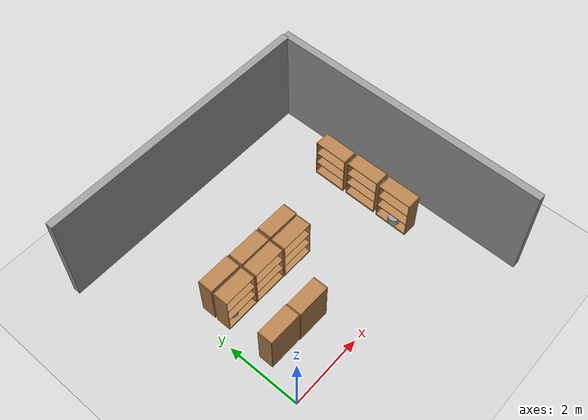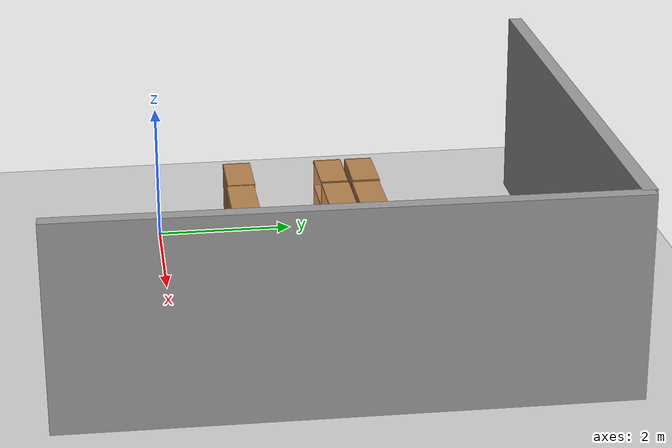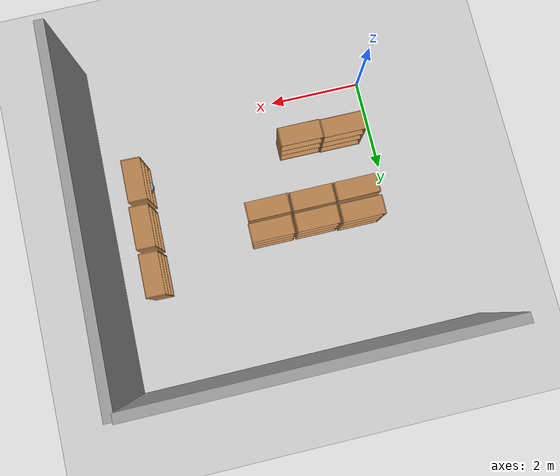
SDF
<sdf version="1.7">
 <world name="default">
  <model name="ground_plane">
   <static>1</static>
   <link name="link">
    <collision name="collision">
     <geometry><plane><normal>0 0 1</normal><size>100 100</size></plane></geometry>
     <surface>
      <contact><collide_bitmask>65535</collide_bitmask></contact>
      <friction><ode><mu>100</mu><mu2>50</mu2></ode></friction>
     </surface>
    </collision>
    <visual name="visual">
     <cast_shadows>0</cast_shadows>
     <geometry><plane><normal>0 0 1</normal><size>100 100</size></plane></geometry>
     <material>
      <script><uri>file://media/materials/scripts/gazebo.material</uri><name>Gazebo/Grey</name></script>
     </material>
    </visual>
   </link>
  </model>
  <model name="bookshelf">
   <static>1</static>
   <link name="link">
    <inertial><mass>1</mass></inertial>
    <collision name="back">
     <pose>0 0.005 0.6 0 -0 0</pose>
     <geometry><box><size>0.9 0.01 1.2</size></box></geometry>
    </collision>
    <visual name="visual1">
     <pose>0 0.005 0.6 0 -0 0</pose>
     <geometry><box><size>0.9 0.01 1.2</size></box></geometry>
     <material>
      <script><uri>file://media/materials/scripts/gazebo.material</uri><name>Gazebo/Wood</name></script>
     </material>
    </visual>
    <collision name="left_side">
     <pose>0.45 -0.195 0.6 0 -0 0</pose>
     <geometry><box><size>0.02 0.4 1.2</size></box></geometry>
    </collision>
    <visual name="visual2">
     <pose>0.45 -0.195 0.6 0 -0 0</pose>
     <geometry><box><size>0.02 0.4 1.2</size></box></geometry>
     <material>
      <script><uri>file://media/materials/scripts/gazebo.material</uri><name>Gazebo/Wood</name></script>
     </material>
    </visual>
    <collision name="right_side">
     <pose>-0.45 -0.195 0.6 0 -0 0</pose>
     <geometry><box><size>0.02 0.4 1.2</size></box></geometry>
    </collision>
    <visual name="visual3">
     <pose>-0.45 -0.195 0.6 0 -0 0</pose>
     <geometry><box><size>0.02 0.4 1.2</size></box></geometry>
     <material>
      <script><uri>file://media/materials/scripts/gazebo.material</uri><name>Gazebo/Wood</name></script>
     </material>
    </visual>
    <collision name="bottom">
     <pose>0 -0.195 0.03 0 -0 0</pose>
     <geometry><box><size>0.88 0.4 0.06</size></box></geometry>
    </collision>
    <visual name="visual4">
     <pose>0 -0.195 0.03 0 -0 0</pose>
     <geometry><box><size>0.88 0.4 0.06</size></box></geometry>
     <material>
      <script><uri>file://media/materials/scripts/gazebo.material</uri><name>Gazebo/Wood</name></script>
     </material>
    </visual>
    <collision name="top">
     <pose>0 -0.195 1.19 0 -0 0</pose>
     <geometry><box><size>0.88 0.4 0.02</size></box></geometry>
    </collision>
    <visual name="visual5">
     <pose>0 -0.195 1.19 0 -0 0</pose>
     <geometry><box><size>0.88 0.4 0.02</size></box></geometry>
     <material>
      <script><uri>file://media/materials/scripts/gazebo.material</uri><name>Gazebo/Wood</name></script>
     </material>
    </visual>
    <collision name="low_shelf">
     <pose>0 -0.195 0.43 0 -0 0</pose>
     <geometry><box><size>0.88 0.4 0.02</size></box></geometry>
    </collision>
    <visual name="visual6">
     <pose>0 -0.195 0.43 0 -0 0</pose>
     <geometry><box><size>0.88 0.4 0.02</size></box></geometry>
     <material>
      <script><uri>file://media/materials/scripts/gazebo.material</uri><name>Gazebo/Wood</name></script>
     </material>
    </visual>
    <collision name="high_shelf">
     <pose>0 -0.195 0.8 0 -0 0</pose>
     <geometry><box><size>0.88 0.4 0.02</size></box></geometry>
    </collision>
    <visual name="visual7">
     <pose>0 -0.195 0.8 0 -0 0</pose>
     <geometry><box><size>0.88 0.4 0.02</size></box></geometry>
     <material>
      <script><uri>file://media/materials/scripts/gazebo.material</uri><name>Gazebo/Wood</name></script>
     </material>
    </visual>
   </link>
   <pose>2.68648 2.72445 0 0 -0 0</pose>
  </model>
  <model name="bookshelf_0">
   <static>1</static>
   <link name="link">
    <inertial><mass>1</mass></inertial>
    <collision name="back">
     <pose>0 0.005 0.6 0 -0 0</pose>
     <geometry><box><size>0.9 0.01 1.2</size></box></geometry>
    </collision>
    <visual name="visual1">
     <pose>0 0.005 0.6 0 -0 0</pose>
     <geometry><box><size>0.9 0.01 1.2</size></box></geometry>
     <material>
      <script><uri>file://media/materials/scripts/gazebo.material</uri><name>Gazebo/Wood</name></script>
     </material>
    </visual>
    <collision name="left_side">
     <pose>0.45 -0.195 0.6 0 -0 0</pose>
     <geometry><box><size>0.02 0.4 1.2</size></box></geometry>
    </collision>
    <visual name="visual2">
     <pose>0.45 -0.195 0.6 0 -0 0</pose>
     <geometry><box><size>0.02 0.4 1.2</size></box></geometry>
     <material>
      <script><uri>file://media/materials/scripts/gazebo.material</uri><name>Gazebo/Wood</name></script>
     </material>
    </visual>
    <collision name="right_side">
     <pose>-0.45 -0.195 0.6 0 -0 0</pose>
     <geometry><box><size>0.02 0.4 1.2</size></box></geometry>
    </collision>
    <visual name="visual3">
     <pose>-0.45 -0.195 0.6 0 -0 0</pose>
     <geometry><box><size>0.02 0.4 1.2</size></box></geometry>
     <material>
      <script><uri>file://media/materials/scripts/gazebo.material</uri><name>Gazebo/Wood</name></script>
     </material>
    </visual>
    <collision name="bottom">
     <pose>0 -0.195 0.03 0 -0 0</pose>
     <geometry><box><size>0.88 0.4 0.06</size></box></geometry>
    </collision>
    <visual name="visual4">
     <pose>0 -0.195 0.03 0 -0 0</pose>
     <geometry><box><size>0.88 0.4 0.06</size></box></geometry>
     <material>
      <script><uri>file://media/materials/scripts/gazebo.material</uri><name>Gazebo/Wood</name></script>
     </material>
    </visual>
    <collision name="top">
     <pose>0 -0.195 1.19 0 -0 0</pose>
     <geometry><box><size>0.88 0.4 0.02</size></box></geometry>
    </collision>
    <visual name="visual5">
     <pose>0 -0.195 1.19 0 -0 0</pose>
     <geometry><box><size>0.88 0.4 0.02</size></box></geometry>
     <material>
      <script><uri>file://media/materials/scripts/gazebo.material</uri><name>Gazebo/Wood</name></script>
     </material>
    </visual>
    <collision name="low_shelf">
     <pose>0 -0.195 0.43 0 -0 0</pose>
     <geometry><box><size>0.88 0.4 0.02</size></box></geometry>
    </collision>
    <visual name="visual6">
     <pose>0 -0.195 0.43 0 -0 0</pose>
     <geometry><box><size>0.88 0.4 0.02</size></box></geometry>
     <material>
      <script><uri>file://media/materials/scripts/gazebo.material</uri><name>Gazebo/Wood</name></script>
     </material>
    </visual>
    <collision name="high_shelf">
     <pose>0 -0.195 0.8 0 -0 0</pose>
     <geometry><box><size>0.88 0.4 0.02</size></box></geometry>
    </collision>
    <visual name="visual7">
     <pose>0 -0.195 0.8 0 -0 0</pose>
     <geometry><box><size>0.88 0.4 0.02</size></box></geometry>
     <material>
      <script><uri>file://media/materials/scripts/gazebo.material</uri><name>Gazebo/Wood</name></script>
     </material>
    </visual>
   </link>
   <pose>1.7387 2.73379 0 0 -0 0</pose>
  </model>
  <model name="bookshelf_1">
   <static>1</static>
   <link name="link">
    <inertial><mass>1</mass></inertial>
    <collision name="back">
     <pose>0 0.005 0.6 0 -0 0</pose>
     <geometry><box><size>0.9 0.01 1.2</size></box></geometry>
    </collision>
    <visual name="visual1">
     <pose>0 0.005 0.6 0 -0 0</pose>
     <geometry><box><size>0.9 0.01 1.2</size></box></geometry>
     <material>
      <script><uri>file://media/materials/scripts/gazebo.material</uri><name>Gazebo/Wood</name></script>
     </material>
    </visual>
    <collision name="left_side">
     <pose>0.45 -0.195 0.6 0 -0 0</pose>
     <geometry><box><size>0.02 0.4 1.2</size></box></geometry>
    </collision>
    <visual name="visual2">
     <pose>0.45 -0.195 0.6 0 -0 0</pose>
     <geometry><box><size>0.02 0.4 1.2</size></box></geometry>
     <material>
      <script><uri>file://media/materials/scripts/gazebo.material</uri><name>Gazebo/Wood</name></script>
     </material>
    </visual>
    <collision name="right_side">
     <pose>-0.45 -0.195 0.6 0 -0 0</pose>
     <geometry><box><size>0.02 0.4 1.2</size></box></geometry>
    </collision>
    <visual name="visual3">
     <pose>-0.45 -0.195 0.6 0 -0 0</pose>
     <geometry><box><size>0.02 0.4 1.2</size></box></geometry>
     <material>
      <script><uri>file://media/materials/scripts/gazebo.material</uri><name>Gazebo/Wood</name></script>
     </material>
    </visual>
    <collision name="bottom">
     <pose>0 -0.195 0.03 0 -0 0</pose>
     <geometry><box><size>0.88 0.4 0.06</size></box></geometry>
    </collision>
    <visual name="visual4">
     <pose>0 -0.195 0.03 0 -0 0</pose>
     <geometry><box><size>0.88 0.4 0.06</size></box></geometry>
     <material>
      <script><uri>file://media/materials/scripts/gazebo.material</uri><name>Gazebo/Wood</name></script>
     </material>
    </visual>
    <collision name="top">
     <pose>0 -0.195 1.19 0 -0 0</pose>
     <geometry><box><size>0.88 0.4 0.02</size></box></geometry>
    </collision>
    <visual name="visual5">
     <pose>0 -0.195 1.19 0 -0 0</pose>
     <geometry><box><size>0.88 0.4 0.02</size></box></geometry>
     <material>
      <script><uri>file://media/materials/scripts/gazebo.material</uri><name>Gazebo/Wood</name></script>
     </material>
    </visual>
    <collision name="low_shelf">
     <pose>0 -0.195 0.43 0 -0 0</pose>
     <geometry><box><size>0.88 0.4 0.02</size></box></geometry>
    </collision>
    <visual name="visual6">
     <pose>0 -0.195 0.43 0 -0 0</pose>
     <geometry><box><size>0.88 0.4 0.02</size></box></geometry>
     <material>
      <script><uri>file://media/materials/scripts/gazebo.material</uri><name>Gazebo/Wood</name></script>
     </material>
    </visual>
    <collision name="high_shelf">
     <pose>0 -0.195 0.8 0 -0 0</pose>
     <geometry><box><size>0.88 0.4 0.02</size></box></geometry>
    </collision>
    <visual name="visual7">
     <pose>0 -0.195 0.8 0 -0 0</pose>
     <geometry><box><size>0.88 0.4 0.02</size></box></geometry>
     <material>
      <script><uri>file://media/materials/scripts/gazebo.material</uri><name>Gazebo/Wood</name></script>
     </material>
    </visual>
   </link>
   <pose>0.793169 2.73431 0 0 -0 0</pose>
  </model>
  <model name="bookshelf_2_clone">
   <static>1</static>
   <link name="link">
    <inertial><mass>1</mass></inertial>
    <collision name="back">
     <pose>0 0.005 0.6 0 -0 0</pose>
     <geometry><box><size>0.9 0.01 1.2</size></box></geometry>
    </collision>
    <visual name="visual1">
     <pose>0 0.005 0.6 0 -0 0</pose>
     <geometry><box><size>0.9 0.01 1.2</size></box></geometry>
     <material>
      <script><uri>file://media/materials/scripts/gazebo.material</uri><name>Gazebo/Wood</name></script>
     </material>
    </visual>
    <collision name="left_side">
     <pose>0.45 -0.195 0.6 0 -0 0</pose>
     <geometry><box><size>0.02 0.4 1.2</size></box></geometry>
    </collision>
    <visual name="visual2">
     <pose>0.45 -0.195 0.6 0 -0 0</pose>
     <geometry><box><size>0.02 0.4 1.2</size></box></geometry>
     <material>
      <script><uri>file://media/materials/scripts/gazebo.material</uri><name>Gazebo/Wood</name></script>
     </material>
    </visual>
    <collision name="right_side">
     <pose>-0.45 -0.195 0.6 0 -0 0</pose>
     <geometry><box><size>0.02 0.4 1.2</size></box></geometry>
    </collision>
    <visual name="visual3">
     <pose>-0.45 -0.195 0.6 0 -0 0</pose>
     <geometry><box><size>0.02 0.4 1.2</size></box></geometry>
     <material>
      <script><uri>file://media/materials/scripts/gazebo.material</uri><name>Gazebo/Wood</name></script>
     </material>
    </visual>
    <collision name="bottom">
     <pose>0 -0.195 0.03 0 -0 0</pose>
     <geometry><box><size>0.88 0.4 0.06</size></box></geometry>
    </collision>
    <visual name="visual4">
     <pose>0 -0.195 0.03 0 -0 0</pose>
     <geometry><box><size>0.88 0.4 0.06</size></box></geometry>
     <material>
      <script><uri>file://media/materials/scripts/gazebo.material</uri><name>Gazebo/Wood</name></script>
     </material>
    </visual>
    <collision name="top">
     <pose>0 -0.195 1.19 0 -0 0</pose>
     <geometry><box><size>0.88 0.4 0.02</size></box></geometry>
    </collision>
    <visual name="visual5">
     <pose>0 -0.195 1.19 0 -0 0</pose>
     <geometry><box><size>0.88 0.4 0.02</size></box></geometry>
     <material>
      <script><uri>file://media/materials/scripts/gazebo.material</uri><name>Gazebo/Wood</name></script>
     </material>
    </visual>
    <collision name="low_shelf">
     <pose>0 -0.195 0.43 0 -0 0</pose>
     <geometry><box><size>0.88 0.4 0.02</size></box></geometry>
    </collision>
    <visual name="visual6">
     <pose>0 -0.195 0.43 0 -0 0</pose>
     <geometry><box><size>0.88 0.4 0.02</size></box></geometry>
     <material>
      <script><uri>file://media/materials/scripts/gazebo.material</uri><name>Gazebo/Wood</name></script>
     </material>
    </visual>
    <collision name="high_shelf">
     <pose>0 -0.195 0.8 0 -0 0</pose>
     <geometry><box><size>0.88 0.4 0.02</size></box></geometry>
    </collision>
    <visual name="visual7">
     <pose>0 -0.195 0.8 0 -0 0</pose>
     <geometry><box><size>0.88 0.4 0.02</size></box></geometry>
     <material>
      <script><uri>file://media/materials/scripts/gazebo.material</uri><name>Gazebo/Wood</name></script>
     </material>
    </visual>
   </link>
   <pose>1.6637 0.95756 0 0 -0 3.13622</pose>
  </model>
  <model name="bookshelf_2_clone_0">
   <static>1</static>
   <link name="link">
    <inertial><mass>1</mass></inertial>
    <collision name="back">
     <pose>0 0.005 0.6 0 -0 0</pose>
     <geometry><box><size>0.9 0.01 1.2</size></box></geometry>
    </collision>
    <visual name="visual1">
     <pose>0 0.005 0.6 0 -0 0</pose>
     <geometry><box><size>0.9 0.01 1.2</size></box></geometry>
     <material>
      <script><uri>file://media/materials/scripts/gazebo.material</uri><name>Gazebo/Wood</name></script>
     </material>
    </visual>
    <collision name="left_side">
     <pose>0.45 -0.195 0.6 0 -0 0</pose>
     <geometry><box><size>0.02 0.4 1.2</size></box></geometry>
    </collision>
    <visual name="visual2">
     <pose>0.45 -0.195 0.6 0 -0 0</pose>
     <geometry><box><size>0.02 0.4 1.2</size></box></geometry>
     <material>
      <script><uri>file://media/materials/scripts/gazebo.material</uri><name>Gazebo/Wood</name></script>
     </material>
    </visual>
    <collision name="right_side">
     <pose>-0.45 -0.195 0.6 0 -0 0</pose>
     <geometry><box><size>0.02 0.4 1.2</size></box></geometry>
    </collision>
    <visual name="visual3">
     <pose>-0.45 -0.195 0.6 0 -0 0</pose>
     <geometry><box><size>0.02 0.4 1.2</size></box></geometry>
     <material>
      <script><uri>file://media/materials/scripts/gazebo.material</uri><name>Gazebo/Wood</name></script>
     </material>
    </visual>
    <collision name="bottom">
     <pose>0 -0.195 0.03 0 -0 0</pose>
     <geometry><box><size>0.88 0.4 0.06</size></box></geometry>
    </collision>
    <visual name="visual4">
     <pose>0 -0.195 0.03 0 -0 0</pose>
     <geometry><box><size>0.88 0.4 0.06</size></box></geometry>
     <material>
      <script><uri>file://media/materials/scripts/gazebo.material</uri><name>Gazebo/Wood</name></script>
     </material>
    </visual>
    <collision name="top">
     <pose>0 -0.195 1.19 0 -0 0</pose>
     <geometry><box><size>0.88 0.4 0.02</size></box></geometry>
    </collision>
    <visual name="visual5">
     <pose>0 -0.195 1.19 0 -0 0</pose>
     <geometry><box><size>0.88 0.4 0.02</size></box></geometry>
     <material>
      <script><uri>file://media/materials/scripts/gazebo.material</uri><name>Gazebo/Wood</name></script>
     </material>
    </visual>
    <collision name="low_shelf">
     <pose>0 -0.195 0.43 0 -0 0</pose>
     <geometry><box><size>0.88 0.4 0.02</size></box></geometry>
    </collision>
    <visual name="visual6">
     <pose>0 -0.195 0.43 0 -0 0</pose>
     <geometry><box><size>0.88 0.4 0.02</size></box></geometry>
     <material>
      <script><uri>file://media/materials/scripts/gazebo.material</uri><name>Gazebo/Wood</name></script>
     </material>
    </visual>
    <collision name="high_shelf">
     <pose>0 -0.195 0.8 0 -0 0</pose>
     <geometry><box><size>0.88 0.4 0.02</size></box></geometry>
    </collision>
    <visual name="visual7">
     <pose>0 -0.195 0.8 0 -0 0</pose>
     <geometry><box><size>0.88 0.4 0.02</size></box></geometry>
     <material>
      <script><uri>file://media/materials/scripts/gazebo.material</uri><name>Gazebo/Wood</name></script>
     </material>
    </visual>
   </link>
   <pose>0.747513 0.98044 0 0 -0 3.13622</pose>
  </model>
  <model name="bookshelf_2_clone_0_clone">
   <static>1</static>
   <link name="link">
    <inertial><mass>1</mass></inertial>
    <collision name="back">
     <pose>0 0.005 0.6 0 -0 0</pose>
     <geometry><box><size>0.9 0.01 1.2</size></box></geometry>
    </collision>
    <visual name="visual1">
     <pose>0 0.005 0.6 0 -0 0</pose>
     <geometry><box><size>0.9 0.01 1.2</size></box></geometry>
     <material>
      <script><uri>file://media/materials/scripts/gazebo.material</uri><name>Gazebo/Wood</name></script>
     </material>
    </visual>
    <collision name="left_side">
     <pose>0.45 -0.195 0.6 0 -0 0</pose>
     <geometry><box><size>0.02 0.4 1.2</size></box></geometry>
    </collision>
    <visual name="visual2">
     <pose>0.45 -0.195 0.6 0 -0 0</pose>
     <geometry><box><size>0.02 0.4 1.2</size></box></geometry>
     <material>
      <script><uri>file://media/materials/scripts/gazebo.material</uri><name>Gazebo/Wood</name></script>
     </material>
    </visual>
    <collision name="right_side">
     <pose>-0.45 -0.195 0.6 0 -0 0</pose>
     <geometry><box><size>0.02 0.4 1.2</size></box></geometry>
    </collision>
    <visual name="visual3">
     <pose>-0.45 -0.195 0.6 0 -0 0</pose>
     <geometry><box><size>0.02 0.4 1.2</size></box></geometry>
     <material>
      <script><uri>file://media/materials/scripts/gazebo.material</uri><name>Gazebo/Wood</name></script>
     </material>
    </visual>
    <collision name="bottom">
     <pose>0 -0.195 0.03 0 -0 0</pose>
     <geometry><box><size>0.88 0.4 0.06</size></box></geometry>
    </collision>
    <visual name="visual4">
     <pose>0 -0.195 0.03 0 -0 0</pose>
     <geometry><box><size>0.88 0.4 0.06</size></box></geometry>
     <material>
      <script><uri>file://media/materials/scripts/gazebo.material</uri><name>Gazebo/Wood</name></script>
     </material>
    </visual>
    <collision name="top">
     <pose>0 -0.195 1.19 0 -0 0</pose>
     <geometry><box><size>0.88 0.4 0.02</size></box></geometry>
    </collision>
    <visual name="visual5">
     <pose>0 -0.195 1.19 0 -0 0</pose>
     <geometry><box><size>0.88 0.4 0.02</size></box></geometry>
     <material>
      <script><uri>file://media/materials/scripts/gazebo.material</uri><name>Gazebo/Wood</name></script>
     </material>
    </visual>
    <collision name="low_shelf">
     <pose>0 -0.195 0.43 0 -0 0</pose>
     <geometry><box><size>0.88 0.4 0.02</size></box></geometry>
    </collision>
    <visual name="visual6">
     <pose>0 -0.195 0.43 0 -0 0</pose>
     <geometry><box><size>0.88 0.4 0.02</size></box></geometry>
     <material>
      <script><uri>file://media/materials/scripts/gazebo.material</uri><name>Gazebo/Wood</name></script>
     </material>
    </visual>
    <collision name="high_shelf">
     <pose>0 -0.195 0.8 0 -0 0</pose>
     <geometry><box><size>0.88 0.4 0.02</size></box></geometry>
    </collision>
    <visual name="visual7">
     <pose>0 -0.195 0.8 0 -0 0</pose>
     <geometry><box><size>0.88 0.4 0.02</size></box></geometry>
     <material>
      <script><uri>file://media/materials/scripts/gazebo.material</uri><name>Gazebo/Wood</name></script>
     </material>
    </visual>
   </link>
   <pose>2.71065 2.78539 0 0 -0 3.13622</pose>
  </model>
  <model name="bookshelf_2_clone_0_clone_0">
   <static>1</static>
   <link name="link">
    <inertial><mass>1</mass></inertial>
    <collision name="back">
     <pose>0 0.005 0.6 0 -0 0</pose>
     <geometry><box><size>0.9 0.01 1.2</size></box></geometry>
    </collision>
    <visual name="visual1">
     <pose>0 0.005 0.6 0 -0 0</pose>
     <geometry><box><size>0.9 0.01 1.2</size></box></geometry>
     <material>
      <script><uri>file://media/materials/scripts/gazebo.material</uri><name>Gazebo/Wood</name></script>
     </material>
    </visual>
    <collision name="left_side">
     <pose>0.45 -0.195 0.6 0 -0 0</pose>
     <geometry><box><size>0.02 0.4 1.2</size></box></geometry>
    </collision>
    <visual name="visual2">
     <pose>0.45 -0.195 0.6 0 -0 0</pose>
     <geometry><box><size>0.02 0.4 1.2</size></box></geometry>
     <material>
      <script><uri>file://media/materials/scripts/gazebo.material</uri><name>Gazebo/Wood</name></script>
     </material>
    </visual>
    <collision name="right_side">
     <pose>-0.45 -0.195 0.6 0 -0 0</pose>
     <geometry><box><size>0.02 0.4 1.2</size></box></geometry>
    </collision>
    <visual name="visual3">
     <pose>-0.45 -0.195 0.6 0 -0 0</pose>
     <geometry><box><size>0.02 0.4 1.2</size></box></geometry>
     <material>
      <script><uri>file://media/materials/scripts/gazebo.material</uri><name>Gazebo/Wood</name></script>
     </material>
    </visual>
    <collision name="bottom">
     <pose>0 -0.195 0.03 0 -0 0</pose>
     <geometry><box><size>0.88 0.4 0.06</size></box></geometry>
    </collision>
    <visual name="visual4">
     <pose>0 -0.195 0.03 0 -0 0</pose>
     <geometry><box><size>0.88 0.4 0.06</size></box></geometry>
     <material>
      <script><uri>file://media/materials/scripts/gazebo.material</uri><name>Gazebo/Wood</name></script>
     </material>
    </visual>
    <collision name="top">
     <pose>0 -0.195 1.19 0 -0 0</pose>
     <geometry><box><size>0.88 0.4 0.02</size></box></geometry>
    </collision>
    <visual name="visual5">
     <pose>0 -0.195 1.19 0 -0 0</pose>
     <geometry><box><size>0.88 0.4 0.02</size></box></geometry>
     <material>
      <script><uri>file://media/materials/scripts/gazebo.material</uri><name>Gazebo/Wood</name></script>
     </material>
    </visual>
    <collision name="low_shelf">
     <pose>0 -0.195 0.43 0 -0 0</pose>
     <geometry><box><size>0.88 0.4 0.02</size></box></geometry>
    </collision>
    <visual name="visual6">
     <pose>0 -0.195 0.43 0 -0 0</pose>
     <geometry><box><size>0.88 0.4 0.02</size></box></geometry>
     <material>
      <script><uri>file://media/materials/scripts/gazebo.material</uri><name>Gazebo/Wood</name></script>
     </material>
    </visual>
    <collision name="high_shelf">
     <pose>0 -0.195 0.8 0 -0 0</pose>
     <geometry><box><size>0.88 0.4 0.02</size></box></geometry>
    </collision>
    <visual name="visual7">
     <pose>0 -0.195 0.8 0 -0 0</pose>
     <geometry><box><size>0.88 0.4 0.02</size></box></geometry>
     <material>
      <script><uri>file://media/materials/scripts/gazebo.material</uri><name>Gazebo/Wood</name></script>
     </material>
    </visual>
   </link>
   <pose>1.74885 2.78963 0 0 -0 3.13622</pose>
  </model>
  <model name="bookshelf_2_clone_0_clone_1">
   <static>1</static>
   <link name="link">
    <inertial><mass>1</mass></inertial>
    <collision name="back">
     <pose>0 0.005 0.6 0 -0 0</pose>
     <geometry><box><size>0.9 0.01 1.2</size></box></geometry>
    </collision>
    <visual name="visual1">
     <pose>0 0.005 0.6 0 -0 0</pose>
     <geometry><box><size>0.9 0.01 1.2</size></box></geometry>
     <material>
      <script><uri>file://media/materials/scripts/gazebo.material</uri><name>Gazebo/Wood</name></script>
     </material>
    </visual>
    <collision name="left_side">
     <pose>0.45 -0.195 0.6 0 -0 0</pose>
     <geometry><box><size>0.02 0.4 1.2</size></box></geometry>
    </collision>
    <visual name="visual2">
     <pose>0.45 -0.195 0.6 0 -0 0</pose>
     <geometry><box><size>0.02 0.4 1.2</size></box></geometry>
     <material>
      <script><uri>file://media/materials/scripts/gazebo.material</uri><name>Gazebo/Wood</name></script>
     </material>
    </visual>
    <collision name="right_side">
     <pose>-0.45 -0.195 0.6 0 -0 0</pose>
     <geometry><box><size>0.02 0.4 1.2</size></box></geometry>
    </collision>
    <visual name="visual3">
     <pose>-0.45 -0.195 0.6 0 -0 0</pose>
     <geometry><box><size>0.02 0.4 1.2</size></box></geometry>
     <material>
      <script><uri>file://media/materials/scripts/gazebo.material</uri><name>Gazebo/Wood</name></script>
     </material>
    </visual>
    <collision name="bottom">
     <pose>0 -0.195 0.03 0 -0 0</pose>
     <geometry><box><size>0.88 0.4 0.06</size></box></geometry>
    </collision>
    <visual name="visual4">
     <pose>0 -0.195 0.03 0 -0 0</pose>
     <geometry><box><size>0.88 0.4 0.06</size></box></geometry>
     <material>
      <script><uri>file://media/materials/scripts/gazebo.material</uri><name>Gazebo/Wood</name></script>
     </material>
    </visual>
    <collision name="top">
     <pose>0 -0.195 1.19 0 -0 0</pose>
     <geometry><box><size>0.88 0.4 0.02</size></box></geometry>
    </collision>
    <visual name="visual5">
     <pose>0 -0.195 1.19 0 -0 0</pose>
     <geometry><box><size>0.88 0.4 0.02</size></box></geometry>
     <material>
      <script><uri>file://media/materials/scripts/gazebo.material</uri><name>Gazebo/Wood</name></script>
     </material>
    </visual>
    <collision name="low_shelf">
     <pose>0 -0.195 0.43 0 -0 0</pose>
     <geometry><box><size>0.88 0.4 0.02</size></box></geometry>
    </collision>
    <visual name="visual6">
     <pose>0 -0.195 0.43 0 -0 0</pose>
     <geometry><box><size>0.88 0.4 0.02</size></box></geometry>
     <material>
      <script><uri>file://media/materials/scripts/gazebo.material</uri><name>Gazebo/Wood</name></script>
     </material>
    </visual>
    <collision name="high_shelf">
     <pose>0 -0.195 0.8 0 -0 0</pose>
     <geometry><box><size>0.88 0.4 0.02</size></box></geometry>
    </collision>
    <visual name="visual7">
     <pose>0 -0.195 0.8 0 -0 0</pose>
     <geometry><box><size>0.88 0.4 0.02</size></box></geometry>
     <material>
      <script><uri>file://media/materials/scripts/gazebo.material</uri><name>Gazebo/Wood</name></script>
     </material>
    </visual>
   </link>
   <pose>0.795432 2.81359 0 0 -0 3.13622</pose>
  </model>
  <model name="bookshelf_3">
   <static>1</static>
   <link name="link">
    <inertial><mass>1</mass></inertial>
    <collision name="back">
     <pose>0 0.005 0.6 0 -0 0</pose>
     <geometry><box><size>0.9 0.01 1.2</size></box></geometry>
    </collision>
    <visual name="visual1">
     <pose>0 0.005 0.6 0 -0 0</pose>
     <geometry><box><size>0.9 0.01 1.2</size></box></geometry>
     <material>
      <script><uri>file://media/materials/scripts/gazebo.material</uri><name>Gazebo/Wood</name></script>
     </material>
    </visual>
    <collision name="left_side">
     <pose>0.45 -0.195 0.6 0 -0 0</pose>
     <geometry><box><size>0.02 0.4 1.2</size></box></geometry>
    </collision>
    <visual name="visual2">
     <pose>0.45 -0.195 0.6 0 -0 0</pose>
     <geometry><box><size>0.02 0.4 1.2</size></box></geometry>
     <material>
      <script><uri>file://media/materials/scripts/gazebo.material</uri><name>Gazebo/Wood</name></script>
     </material>
    </visual>
    <collision name="right_side">
     <pose>-0.45 -0.195 0.6 0 -0 0</pose>
     <geometry><box><size>0.02 0.4 1.2</size></box></geometry>
    </collision>
    <visual name="visual3">
     <pose>-0.45 -0.195 0.6 0 -0 0</pose>
     <geometry><box><size>0.02 0.4 1.2</size></box></geometry>
     <material>
      <script><uri>file://media/materials/scripts/gazebo.material</uri><name>Gazebo/Wood</name></script>
     </material>
    </visual>
    <collision name="bottom">
     <pose>0 -0.195 0.03 0 -0 0</pose>
     <geometry><box><size>0.88 0.4 0.06</size></box></geometry>
    </collision>
    <visual name="visual4">
     <pose>0 -0.195 0.03 0 -0 0</pose>
     <geometry><box><size>0.88 0.4 0.06</size></box></geometry>
     <material>
      <script><uri>file://media/materials/scripts/gazebo.material</uri><name>Gazebo/Wood</name></script>
     </material>
    </visual>
    <collision name="top">
     <pose>0 -0.195 1.19 0 -0 0</pose>
     <geometry><box><size>0.88 0.4 0.02</size></box></geometry>
    </collision>
    <visual name="visual5">
     <pose>0 -0.195 1.19 0 -0 0</pose>
     <geometry><box><size>0.88 0.4 0.02</size></box></geometry>
     <material>
      <script><uri>file://media/materials/scripts/gazebo.material</uri><name>Gazebo/Wood</name></script>
     </material>
    </visual>
    <collision name="low_shelf">
     <pose>0 -0.195 0.43 0 -0 0</pose>
     <geometry><box><size>0.88 0.4 0.02</size></box></geometry>
    </collision>
    <visual name="visual6">
     <pose>0 -0.195 0.43 0 -0 0</pose>
     <geometry><box><size>0.88 0.4 0.02</size></box></geometry>
     <material>
      <script><uri>file://media/materials/scripts/gazebo.material</uri><name>Gazebo/Wood</name></script>
     </material>
    </visual>
    <collision name="high_shelf">
     <pose>0 -0.195 0.8 0 -0 0</pose>
     <geometry><box><size>0.88 0.4 0.02</size></box></geometry>
    </collision>
    <visual name="visual7">
     <pose>0 -0.195 0.8 0 -0 0</pose>
     <geometry><box><size>0.88 0.4 0.02</size></box></geometry>
     <material>
      <script><uri>file://media/materials/scripts/gazebo.material</uri><name>Gazebo/Wood</name></script>
     </material>
    </visual>
   </link>
   <pose>5.48196 3.32826 0 0 0 -1.59113</pose>
  </model>
  <model name="bookshelf_3_clone">
   <static>1</static>
   <link name="link">
    <inertial><mass>1</mass></inertial>
    <collision name="back">
     <pose>0 0.005 0.6 0 -0 0</pose>
     <geometry><box><size>0.9 0.01 1.2</size></box></geometry>
    </collision>
    <visual name="visual1">
     <pose>0 0.005 0.6 0 -0 0</pose>
     <geometry><box><size>0.9 0.01 1.2</size></box></geometry>
     <material>
      <script><uri>file://media/materials/scripts/gazebo.material</uri><name>Gazebo/Wood</name></script>
     </material>
    </visual>
    <collision name="left_side">
     <pose>0.45 -0.195 0.6 0 -0 0</pose>
     <geometry><box><size>0.02 0.4 1.2</size></box></geometry>
    </collision>
    <visual name="visual2">
     <pose>0.45 -0.195 0.6 0 -0 0</pose>
     <geometry><box><size>0.02 0.4 1.2</size></box></geometry>
     <material>
      <script><uri>file://media/materials/scripts/gazebo.material</uri><name>Gazebo/Wood</name></script>
     </material>
    </visual>
    <collision name="right_side">
     <pose>-0.45 -0.195 0.6 0 -0 0</pose>
     <geometry><box><size>0.02 0.4 1.2</size></box></geometry>
    </collision>
    <visual name="visual3">
     <pose>-0.45 -0.195 0.6 0 -0 0</pose>
     <geometry><box><size>0.02 0.4 1.2</size></box></geometry>
     <material>
      <script><uri>file://media/materials/scripts/gazebo.material</uri><name>Gazebo/Wood</name></script>
     </material>
    </visual>
    <collision name="bottom">
     <pose>0 -0.195 0.03 0 -0 0</pose>
     <geometry><box><size>0.88 0.4 0.06</size></box></geometry>
    </collision>
    <visual name="visual4">
     <pose>0 -0.195 0.03 0 -0 0</pose>
     <geometry><box><size>0.88 0.4 0.06</size></box></geometry>
     <material>
      <script><uri>file://media/materials/scripts/gazebo.material</uri><name>Gazebo/Wood</name></script>
     </material>
    </visual>
    <collision name="top">
     <pose>0 -0.195 1.19 0 -0 0</pose>
     <geometry><box><size>0.88 0.4 0.02</size></box></geometry>
    </collision>
    <visual name="visual5">
     <pose>0 -0.195 1.19 0 -0 0</pose>
     <geometry><box><size>0.88 0.4 0.02</size></box></geometry>
     <material>
      <script><uri>file://media/materials/scripts/gazebo.material</uri><name>Gazebo/Wood</name></script>
     </material>
    </visual>
    <collision name="low_shelf">
     <pose>0 -0.195 0.43 0 -0 0</pose>
     <geometry><box><size>0.88 0.4 0.02</size></box></geometry>
    </collision>
    <visual name="visual6">
     <pose>0 -0.195 0.43 0 -0 0</pose>
     <geometry><box><size>0.88 0.4 0.02</size></box></geometry>
     <material>
      <script><uri>file://media/materials/scripts/gazebo.material</uri><name>Gazebo/Wood</name></script>
     </material>
    </visual>
    <collision name="high_shelf">
     <pose>0 -0.195 0.8 0 -0 0</pose>
     <geometry><box><size>0.88 0.4 0.02</size></box></geometry>
    </collision>
    <visual name="visual7">
     <pose>0 -0.195 0.8 0 -0 0</pose>
     <geometry><box><size>0.88 0.4 0.02</size></box></geometry>
     <material>
      <script><uri>file://media/materials/scripts/gazebo.material</uri><name>Gazebo/Wood</name></script>
     </material>
    </visual>
   </link>
   <pose>5.47577 2.33053 0 0 0 -1.59113</pose>
  </model>
  <model name="bookshelf_3_clone_0">
   <static>1</static>
   <link name="link">
    <inertial><mass>1</mass></inertial>
    <collision name="back">
     <pose>0 0.005 0.6 0 -0 0</pose>
     <geometry><box><size>0.9 0.01 1.2</size></box></geometry>
    </collision>
    <visual name="visual1">
     <pose>0 0.005 0.6 0 -0 0</pose>
     <geometry><box><size>0.9 0.01 1.2</size></box></geometry>
     <material>
      <script><uri>file://media/materials/scripts/gazebo.material</uri><name>Gazebo/Wood</name></script>
     </material>
    </visual>
    <collision name="left_side">
     <pose>0.45 -0.195 0.6 0 -0 0</pose>
     <geometry><box><size>0.02 0.4 1.2</size></box></geometry>
    </collision>
    <visual name="visual2">
     <pose>0.45 -0.195 0.6 0 -0 0</pose>
     <geometry><box><size>0.02 0.4 1.2</size></box></geometry>
     <material>
      <script><uri>file://media/materials/scripts/gazebo.material</uri><name>Gazebo/Wood</name></script>
     </material>
    </visual>
    <collision name="right_side">
     <pose>-0.45 -0.195 0.6 0 -0 0</pose>
     <geometry><box><size>0.02 0.4 1.2</size></box></geometry>
    </collision>
    <visual name="visual3">
     <pose>-0.45 -0.195 0.6 0 -0 0</pose>
     <geometry><box><size>0.02 0.4 1.2</size></box></geometry>
     <material>
      <script><uri>file://media/materials/scripts/gazebo.material</uri><name>Gazebo/Wood</name></script>
     </material>
    </visual>
    <collision name="bottom">
     <pose>0 -0.195 0.03 0 -0 0</pose>
     <geometry><box><size>0.88 0.4 0.06</size></box></geometry>
    </collision>
    <visual name="visual4">
     <pose>0 -0.195 0.03 0 -0 0</pose>
     <geometry><box><size>0.88 0.4 0.06</size></box></geometry>
     <material>
      <script><uri>file://media/materials/scripts/gazebo.material</uri><name>Gazebo/Wood</name></script>
     </material>
    </visual>
    <collision name="top">
     <pose>0 -0.195 1.19 0 -0 0</pose>
     <geometry><box><size>0.88 0.4 0.02</size></box></geometry>
    </collision>
    <visual name="visual5">
     <pose>0 -0.195 1.19 0 -0 0</pose>
     <geometry><box><size>0.88 0.4 0.02</size></box></geometry>
     <material>
      <script><uri>file://media/materials/scripts/gazebo.material</uri><name>Gazebo/Wood</name></script>
     </material>
    </visual>
    <collision name="low_shelf">
     <pose>0 -0.195 0.43 0 -0 0</pose>
     <geometry><box><size>0.88 0.4 0.02</size></box></geometry>
    </collision>
    <visual name="visual6">
     <pose>0 -0.195 0.43 0 -0 0</pose>
     <geometry><box><size>0.88 0.4 0.02</size></box></geometry>
     <material>
      <script><uri>file://media/materials/scripts/gazebo.material</uri><name>Gazebo/Wood</name></script>
     </material>
    </visual>
    <collision name="high_shelf">
     <pose>0 -0.195 0.8 0 -0 0</pose>
     <geometry><box><size>0.88 0.4 0.02</size></box></geometry>
    </collision>
    <visual name="visual7">
     <pose>0 -0.195 0.8 0 -0 0</pose>
     <geometry><box><size>0.88 0.4 0.02</size></box></geometry>
     <material>
      <script><uri>file://media/materials/scripts/gazebo.material</uri><name>Gazebo/Wood</name></script>
     </material>
    </visual>
   </link>
   <pose>5.4432 1.32929 0 0 0 -1.59113</pose>
  </model>
  <model name="grey_wall">
   <static>1</static>
   <link name="link">
    <pose>0 0 1.4 0 -0 0</pose>
    <collision name="collision"><geometry><box><size>7.5 0.2 2.8</size></box></geometry></collision>
    <visual name="visual">
     <cast_shadows>0</cast_shadows>
     <geometry><box><size>7.5 0.2 2.8</size></box></geometry>
     <material>
      <script>
       <uri>model://grey_wall/materials/scripts</uri>
       <uri>model://grey_wall/materials/textures</uri>
       <name>vrc/grey_wall</name>
      </script>
     </material>
    </visual>
   </link>
   <pose>2.43642 5.77308 0 0 -0 0</pose>
  </model>
  <model name="grey_wall_0">
   <static>1</static>
   <link name="link">
    <pose>0 0 1.4 0 -0 0</pose>
    <collision name="collision"><geometry><box><size>7.5 0.2 2.8</size></box></geometry></collision>
    <visual name="visual">
     <cast_shadows>0</cast_shadows>
     <geometry><box><size>7.5 0.2 2.8</size></box></geometry>
     <material>
      <script>
       <uri>model://grey_wall/materials/scripts</uri>
       <uri>model://grey_wall/materials/textures</uri>
       <name>vrc/grey_wall</name>
      </script>
     </material>
    </visual>
   </link>
   <pose>6.18613 2.08199 0 0 0 -1.58733</pose>
  </model>
  <model name="short_cylinder">
   <link name="link">
    <inertial>
     <mass>1</mass>
     <inertia><ixx>0.145833</ixx><ixy>0</ixy><ixz>0</ixz><iyy>0.145833</iyy><iyz>0</iyz><izz>0.125</izz></inertia>
    </inertial>
    <visual name="visual">
     <geometry><cylinder><radius>0.15</radius><length>0.2</length></cylinder></geometry>
     <material>
      <script><name>Gazebo/Grey</name><uri>file://media/materials/scripts/gazebo.material</uri></script>
      <shader type="pixel"><normal_map>__default__</normal_map></shader>
      <ambient>0.3 0.3 0.3 1</ambient>
      <diffuse>0.7 0.7 0.7 1</diffuse>
      <specular>0.01 0.01 0.01 1</specular>
      <emissive>0 0 0 1</emissive>
     </material>
    </visual>
    <collision name="collision">
     <geometry><cylinder><radius>0.15</radius><length>0.2</length></cylinder></geometry>
     <surface>
      <friction>
       <ode><mu>1</mu><mu2>1</mu2><fdir1>0 0 0</fdir1><slip1>0</slip1><slip2>0</slip2></ode>
       <torsional>
        <coefficient>1</coefficient>
        <patch_radius>0</patch_radius>
        <surface_radius>0</surface_radius>
        <use_patch_radius>1</use_patch_radius>
        <ode><slip>0</slip></ode>
       </torsional>
      </friction>
      <bounce><restitution_coefficient>0</restitution_coefficient><threshold>1e+06</threshold></bounce>
      <contact>
       <collide_without_contact>0</collide_without_contact>
       <collide_without_contact_bitmask>1</collide_without_contact_bitmask>
       <collide_bitmask>1</collide_bitmask>
       <ode>
        <soft_cfm>0</soft_cfm>
        <soft_erp>0.2</soft_erp>
        <kp>1e+13</kp>
        <kd>1</kd>
        <max_vel>0.01</max_vel>
        <min_depth>0</min_depth>
       </ode>
       <bullet>
        <split_impulse>1</split_impulse>
        <split_impulse_penetration_threshold>-0.01</split_impulse_penetration_threshold>
        <soft_cfm>0</soft_cfm>
        <soft_erp>0.2</soft_erp>
        <kp>1e+13</kp>
        <kd>1</kd>
       </bullet>
      </contact>
     </surface>
    </collision>
   </link>
   <static>0</static>
   <pose>0.668685 2.58418 0.160004 -2.3e-05 -9e-06 -0.010192</pose>
  </model>
  <model name="short_cylinder_0">
   <link name="link">
    <inertial>
     <mass>1</mass>
     <inertia><ixx>0.145833</ixx><ixy>0</ixy><ixz>0</ixz><iyy>0.145833</iyy><iyz>0</iyz><izz>0.125</izz></inertia>
    </inertial>
    <visual name="visual">
     <geometry><cylinder><radius>0.15</radius><length>0.2</length></cylinder></geometry>
     <material>
      <script><name>Gazebo/Grey</name><uri>file://media/materials/scripts/gazebo.material</uri></script>
      <shader type="pixel"><normal_map>__default__</normal_map></shader>
      <ambient>0.3 0.3 0.3 1</ambient>
      <diffuse>0.7 0.7 0.7 1</diffuse>
      <specular>0.01 0.01 0.01 1</specular>
      <emissive>0 0 0 1</emissive>
     </material>
    </visual>
    <collision name="collision">
     <geometry><cylinder><radius>0.15</radius><length>0.2</length></cylinder></geometry>
     <surface>
      <friction>
       <ode><mu>1</mu><mu2>1</mu2><fdir1>0 0 0</fdir1><slip1>0</slip1><slip2>0</slip2></ode>
       <torsional>
        <coefficient>1</coefficient>
        <patch_radius>0</patch_radius>
        <surface_radius>0</surface_radius>
        <use_patch_radius>1</use_patch_radius>
        <ode><slip>0</slip></ode>
       </torsional>
      </friction>
      <bounce><restitution_coefficient>0</restitution_coefficient><threshold>1e+06</threshold></bounce>
      <contact>
       <collide_without_contact>0</collide_without_contact>
       <collide_without_contact_bitmask>1</collide_without_contact_bitmask>
       <collide_bitmask>1</collide_bitmask>
       <ode>
        <soft_cfm>0</soft_cfm>
        <soft_erp>0.2</soft_erp>
        <kp>1e+13</kp>
        <kd>1</kd>
        <max_vel>0.01</max_vel>
        <min_depth>0</min_depth>
       </ode>
       <bullet>
        <split_impulse>1</split_impulse>
        <split_impulse_penetration_threshold>-0.01</split_impulse_penetration_threshold>
        <soft_cfm>0</soft_cfm>
        <soft_erp>0.2</soft_erp>
        <kp>1e+13</kp>
        <kd>1</kd>
       </bullet>
      </contact>
     </surface>
    </collision>
   </link>
   <static>0</static>
   <pose>5.16823 1.32238 0.159993 -4e-06 -6e-06 -0.116039</pose>
  </model>
 </world>
</sdf>
